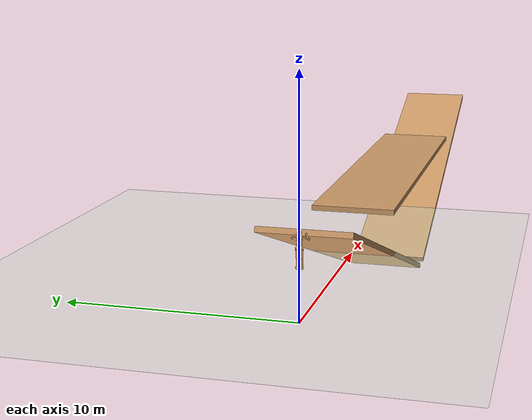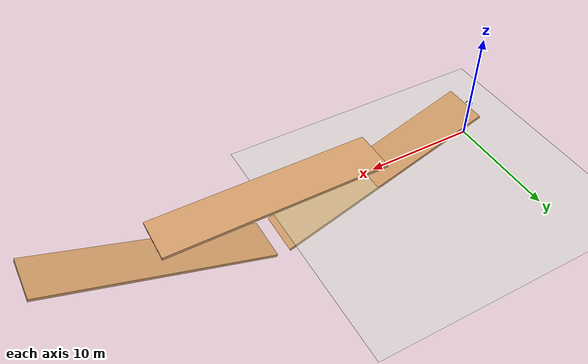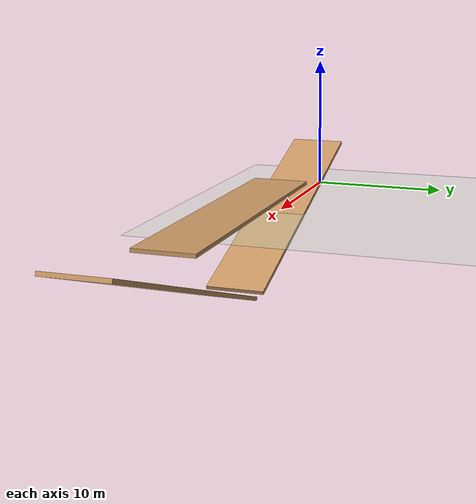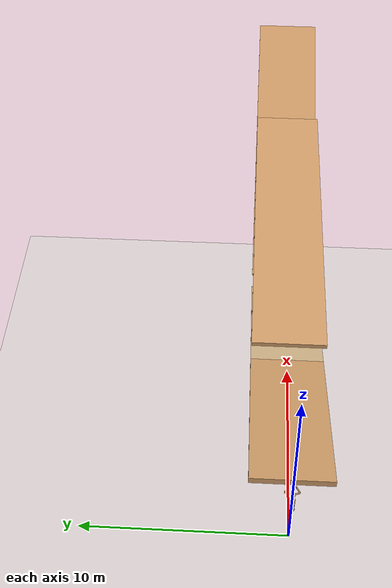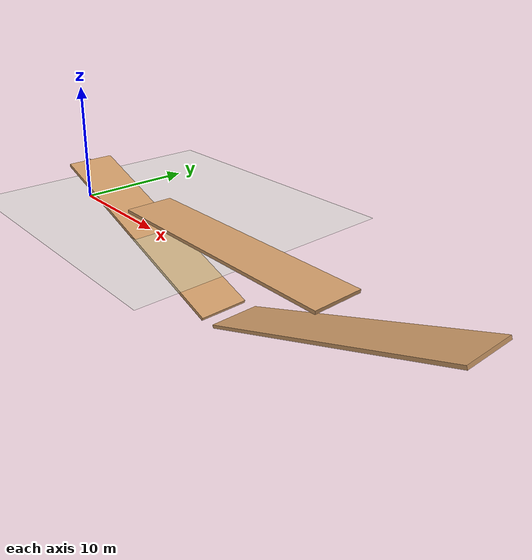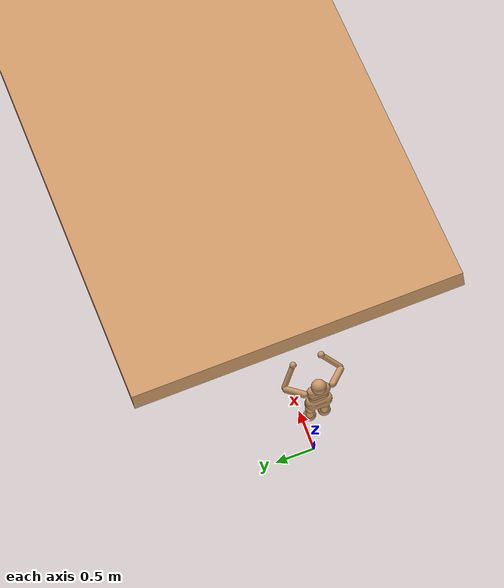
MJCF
<?xml version="1.0" encoding="UTF-8"?>
<mujoco model="humanoid_with_bridge">
    <compiler angle="degree" inertiafromgeom="true"/>
    <default>
        <joint armature="1" damping="1" limited="true"/>
        <geom conaffinity="1" condim="1" contype="1" margin="0.001"
            material="geom" rgba="0.8 0.6 0.4 1"/>
        <motor ctrllimited="true" ctrlrange="-0.4 0.4"/>
    </default>
    <option integrator="RK4" iterations="50" solver="PGS" timestep="0.003"/>
    <visual>
        <map fogend="5" fogstart="3"/>
    </visual>

    <asset>
        <!-- Texturas y materiales -->
        <texture builtin="checker" name="texplane" height="100" width="100"
                rgb1="0.8 0.8 0.8" rgb2="0.5 0.5 0.5" type="2d"/>
        <material name="MatPlane" texture="texplane" texrepeat="20 20"/>
        <material name="geom" rgba="0.8 0.6 0.4 1"/>
    </asset>

    <worldbody>
        <light directional="true" diffuse="1 1 1" dir="0 0 -1" pos="0 0 10"/>
        <geom condim="3" friction="1 .1 .1" material="MatPlane" name="floor" pos="0 0 0" rgba="0.8 0.9 0.8 1" size="20 20 0.125" type="plane"/>

        <!-- Plano de subida (+10°) -->
        <geom name="ramp_up"   type="box"
            pos="10  0 0.125"
            size="10 2 0.125"
            quat="0.9848 0 0.1736 0"
            material="MatPlane"/>

        <geom name="top_plateau" type="box"
            pos="20  0 2.125"
            size="10 2 0.125"
            quat="1 0 0 0"
            material="MatPlane"/>

        <geom name="ramp_down"  type="box"
            pos="30  0 0.125"
            size="10 2 0.125"
            quat="0.9848 0 -0.1736 0"
            material="MatPlane"/>

        <!-- Cámara cenital -->
        <camera name="overhead" mode="trackcom"
                pos="0 -30 12" xyaxes="1 0 0 0 1 0"/>

        <body name="torso" pos="0 0 3.5">
            <joint armature="0" damping="0" limited="false" name="root" pos="0 0 0" stiffness="0" type="free"/>
            <geom fromto="0 -.07 0 0 .07 0" name="torso1" size="0.07" type="capsule"/>
            <geom name="head" pos="0 0 .19" size=".09" type="sphere" user="258"/>
            <geom fromto="-.01 -.06 -.12 -.01 .06 -.12" name="uwaist" size="0.06" type="capsule"/>
            <body name="lwaist" pos="-.01 0 -0.260" quat="1.000 0 -0.002 0">
                <geom fromto="0 -.06 0 0 .06 0" name="lwaist" size="0.06" type="capsule"/>
                <joint armature="0.02" axis="0 0 1" damping="5" name="abdomen_z" pos="0 0 0.065" range="-45 45" stiffness="20" type="hinge"/>
                <joint armature="0.02" axis="0 1 0" damping="5" name="abdomen_y" pos="0 0 0.065" range="-75 30" stiffness="10" type="hinge"/>
                <body name="pelvis" pos="0 0 -0.165" quat="1.000 0 -0.002 0">
                    <joint armature="0.02" axis="1 0 0" damping="5" name="abdomen_x" pos="0 0 0.1" range="-35 35" stiffness="10" type="hinge"/>
                    <geom fromto="-.02 -.07 0 -.02 .07 0" name="butt" size="0.09" type="capsule"/>
                    <body name="right_thigh" pos="0 -0.1 -0.04">
                        <joint armature="0.01" axis="1 0 0" damping="5" name="right_hip_x" pos="0 0 0" range="-25 5" stiffness="10" type="hinge"/>
                        <joint armature="0.01" axis="0 0 1" damping="5" name="right_hip_z" pos="0 0 0" range="-60 35" stiffness="10" type="hinge"/>
                        <joint armature="0.0080" axis="0 1 0" damping="5" name="right_hip_y" pos="0 0 0" range="-110 20" stiffness="20" type="hinge"/>
                        <geom fromto="0 0 0 0 0.01 -.34" name="right_thigh1" size="0.06" type="capsule"/>
                        <body name="right_shin" pos="0 0.01 -0.403">
                            <joint armature="0.0060" axis="0 -1 0" name="right_knee" pos="0 0 .02" range="-160 -2" type="hinge"/>
                            <geom fromto="0 0 0 0 0 -.3" name="right_shin1" size="0.049" type="capsule"/>
                            <body name="right_foot" pos="0 0 -0.45">
                                <geom name="right_foot" pos="0 0 0.1" size="0.075" type="sphere" user="0"/>
                            </body>
                        </body>
                    </body>
                    <body name="left_thigh" pos="0 0.1 -0.04">
                        <joint armature="0.01" axis="-1 0 0" damping="5" name="left_hip_x" pos="0 0 0" range="-25 5" stiffness="10" type="hinge"/>
                        <joint armature="0.01" axis="0 0 -1" damping="5" name="left_hip_z" pos="0 0 0" range="-60 35" stiffness="10" type="hinge"/>
                        <joint armature="0.01" axis="0 1 0" damping="5" name="left_hip_y" pos="0 0 0" range="-110 20" stiffness="20" type="hinge"/>
                        <geom fromto="0 0 0 0 -0.01 -.34" name="left_thigh1" size="0.06" type="capsule"/>
                        <body name="left_shin" pos="0 -0.01 -0.403">
                            <joint armature="0.0060" axis="0 -1 0" name="left_knee" pos="0 0 .02" range="-160 -2" stiffness="1" type="hinge"/>
                            <geom fromto="0 0 0 0 0 -.3" name="left_shin1" size="0.049" type="capsule"/>
                            <body name="left_foot" pos="0 0 -0.45">
                                <geom name="left_foot" type="sphere" size="0.075" pos="0 0 0.1" user="0" />
                            </body>
                        </body>
                    </body>
                </body>
            </body>
            <body name="right_upper_arm" pos="0 -0.17 0.06">
                <joint armature="0.0068" axis="2 1 1" name="right_shoulder1" pos="0 0 0" range="-85 60" stiffness="1" type="hinge"/>
                <joint armature="0.0051" axis="0 -1 1" name="right_shoulder2" pos="0 0 0" range="-85 60" stiffness="1" type="hinge"/>
                <geom fromto="0 0 0 .16 -.16 -.16" name="right_uarm1" size="0.04 0.16" type="capsule"/>
                <body name="right_lower_arm" pos=".18 -.18 -.18">
                    <joint armature="0.0028" axis="0 -1 1" name="right_elbow" pos="0 0 0" range="-90 50" stiffness="0" type="hinge"/>
                    <geom fromto="0.01 0.01 0.01 .17 .17 .17" name="right_larm" size="0.031" type="capsule"/>
                    <geom name="right_hand" pos=".18 .18 .18" size="0.04" type="sphere"/>
                </body>
            </body>
            <body name="left_upper_arm" pos="0 0.17 0.06">
                <joint armature="0.0068" axis="2 -1 1" name="left_shoulder1" pos="0 0 0" range="-60 85" stiffness="1" type="hinge"/>
                <joint armature="0.0051" axis="0 1 1" name="left_shoulder2" pos="0 0 0" range="-60 85" stiffness="1" type="hinge"/>
                <geom fromto="0 0 0 .16 .16 -.16" name="left_uarm1" size="0.04 0.16" type="capsule"/>
                <body name="left_lower_arm" pos=".18 .18 -.18">
                    <joint armature="0.0028" axis="0 -1 -1" name="left_elbow" pos="0 0 0" range="-90 50" stiffness="0" type="hinge"/>
                    <geom fromto="0.01 -0.01 0.01 .17 -.17 .17" name="left_larm" size="0.031" type="capsule"/>
                    <geom name="left_hand" pos=".18 -.18 .18" size="0.04" type="sphere"/>
                </body>
            </body>
        </body>
    </worldbody>
    <tendon>
        <fixed name="left_hipknee">
            <joint coef="-1" joint="left_hip_y"/>
            <joint coef="1" joint="left_knee"/>
        </fixed>
        <fixed name="right_hipknee">
            <joint coef="-1" joint="right_hip_y"/>
            <joint coef="1" joint="right_knee"/>
        </fixed>
    </tendon>

    <actuator>
        <motor gear="100" joint="abdomen_y" name="abdomen_y"/>
        <motor gear="100" joint="abdomen_z" name="abdomen_z"/>
        <motor gear="100" joint="abdomen_x" name="abdomen_x"/>
        <motor gear="100" joint="right_hip_x" name="right_hip_x"/>
        <motor gear="100" joint="right_hip_z" name="right_hip_z"/>
        <motor gear="300" joint="right_hip_y" name="right_hip_y"/>
        <motor gear="200" joint="right_knee" name="right_knee"/>
        <motor gear="100" joint="left_hip_x" name="left_hip_x"/>
        <motor gear="100" joint="left_hip_z" name="left_hip_z"/>
        <motor gear="300" joint="left_hip_y" name="left_hip_y"/>
        <motor gear="200" joint="left_knee" name="left_knee"/>
        <motor gear="25" joint="right_shoulder1" name="right_shoulder1"/>
        <motor gear="25" joint="right_shoulder2" name="right_shoulder2"/>
        <motor gear="25" joint="right_elbow" name="right_elbow"/>
        <motor gear="25" joint="left_shoulder1" name="left_shoulder1"/>
        <motor gear="25" joint="left_shoulder2" name="left_shoulder2"/>
        <motor gear="25" joint="left_elbow" name="left_elbow"/>
    </actuator>
</mujoco>
